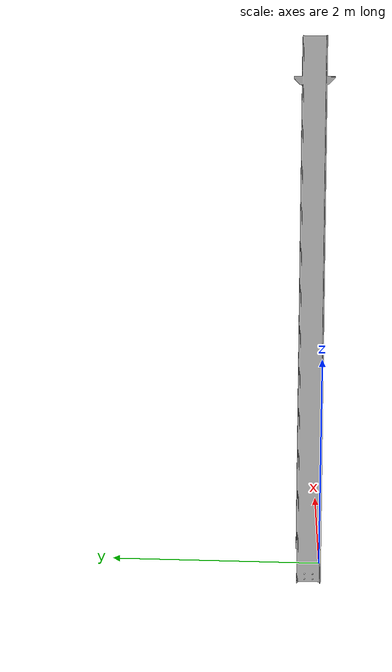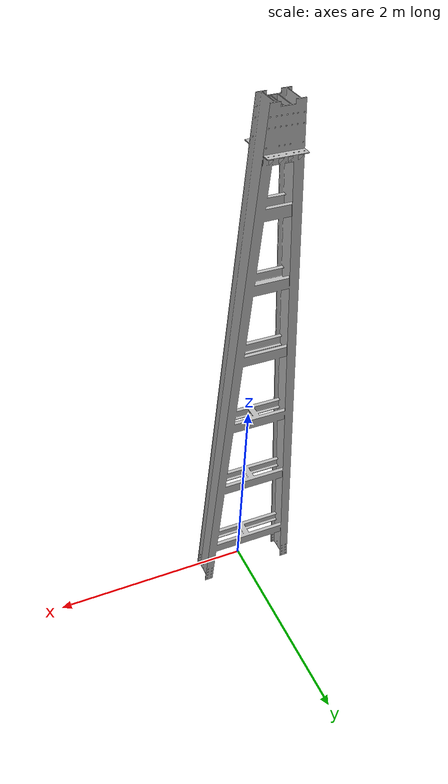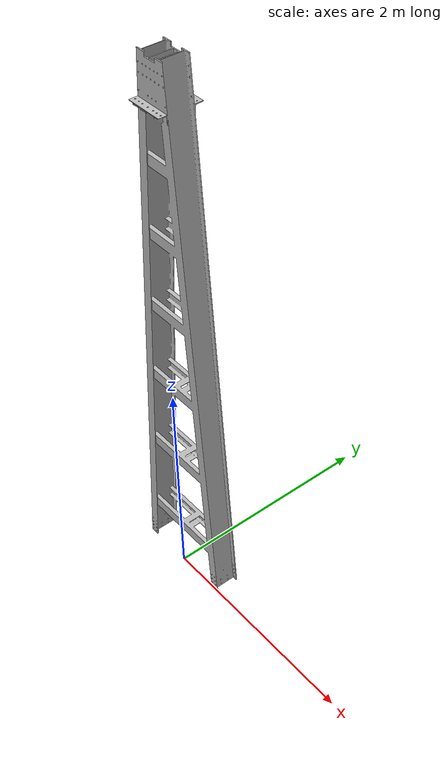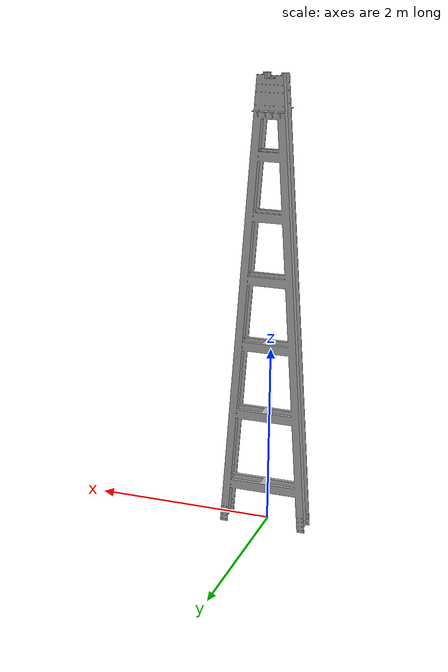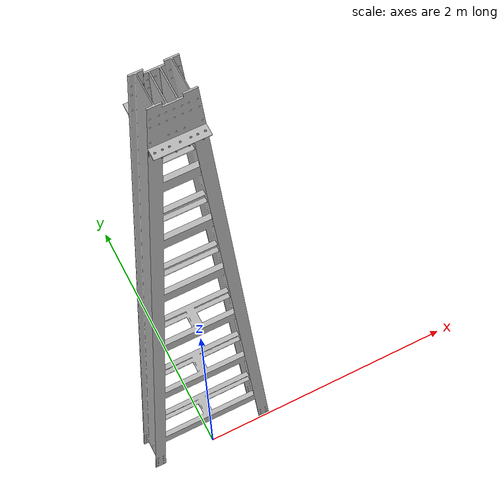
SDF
<?xml version='1.0'?>
<sdf version='1.4'>
  <model name="FGAG1002_COLUMNA2">
 <static>false</static>
 <link name="mesh_link">
   <pose>0 0 -5.25 0 0 0</pose>
	<inertial>
            <mass>1000.0</mass>
 	</inertial>
        <visual name="visual">
        <geometry>
            <mesh><uri>model://FGAG1002_COLUMNA2/meshes/FGAG1002_COLUMNA2.stl</uri></mesh>
          </geometry>
        </visual>
        <collision name="collision">
          <geometry>
            <mesh><uri>model://FGAG1002_COLUMNA2/meshes/FGAG1002_COLUMNA2.stl</uri></mesh>
          </geometry>
        </collision>
      </link>
      <joint name='anchor' type='fixed'>
        <child>mesh_link</child>
        <parent>world</parent>
      </joint>
  </model>
</sdf>
